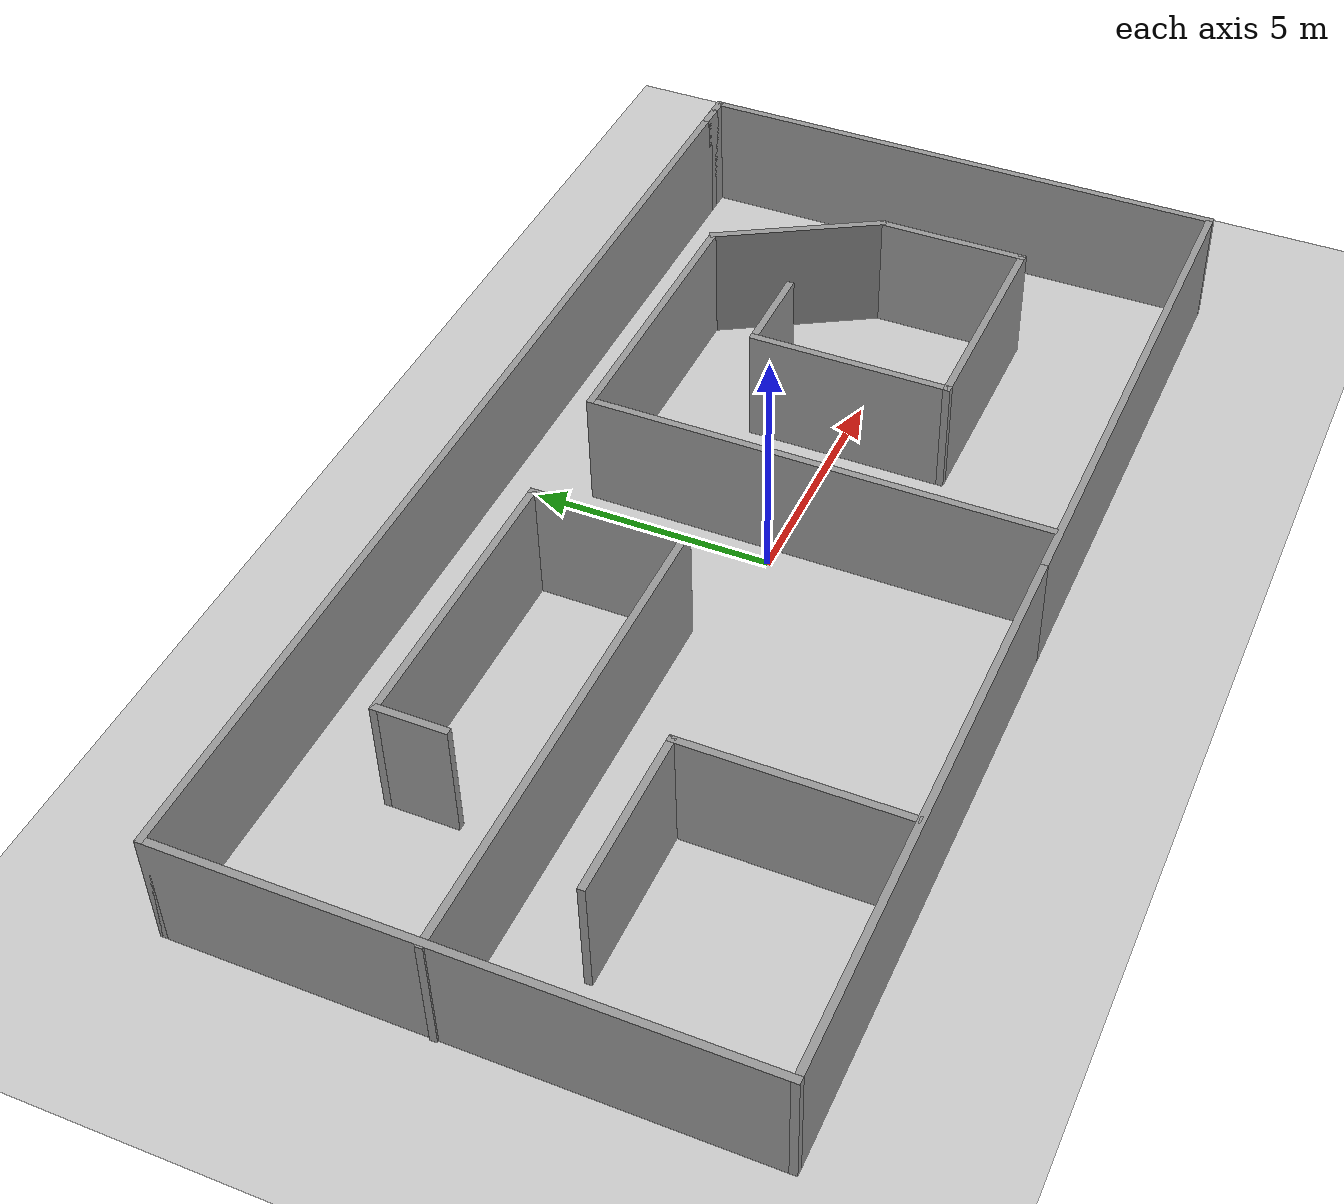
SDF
<sdf version="1.7">
 <world name="default">
  <light name="sun" type="directional">
   <pose>0 0 10 0 -0 0</pose>
   <diffuse>0.8 0.8 0.8 1</diffuse>
   <specular>0.2 0.2 0.2 1</specular>
   <attenuation>
    <range>1000</range>
    <constant>0.9</constant>
    <linear>0.01</linear>
    <quadratic>0.001</quadratic>
   </attenuation>
   <direction>-0.5 0.1 -0.9</direction>
   <spot><inner_angle>0</inner_angle><outer_angle>0</outer_angle><falloff>0</falloff></spot>
  </light>
  <model name="ground_plane">
   <static>1</static>
   <link name="link">
    <collision name="collision">
     <geometry><plane><normal>0 0 1</normal><size>100 100</size></plane></geometry>
     <surface><friction><ode><mu>100</mu><mu2>50</mu2></ode></friction></surface>
    </collision>
    <visual name="visual">
     <cast_shadows>0</cast_shadows>
     <geometry><plane><normal>0 0 1</normal><size>100 100</size></plane></geometry>
     <material>
      <script><uri>file://media/materials/scripts/gazebo.material</uri><name>Gazebo/Grey</name></script>
     </material>
    </visual>
   </link>
  </model>
  <gravity>0 0 -9.8</gravity>
  <magnetic_field>6e-06 2.3e-05 -4.2e-05</magnetic_field>
  <atmosphere type="adiabatic"/>
  <physics type="ode">
   <max_step_size>0.001</max_step_size>
   <real_time_factor>1</real_time_factor>
   <real_time_update_rate>1000</real_time_update_rate>
  </physics>
  <scene><ambient>0.4 0.4 0.4 1</ambient><background>0.7 0.7 0.7 1</background><shadows>1</shadows></scene>
  <spherical_coordinates>
   <surface_model>EARTH_WGS84</surface_model>
   <latitude_deg>0</latitude_deg>
   <longitude_deg>0</longitude_deg>
   <elevation>0</elevation>
   <heading_deg>0</heading_deg>
  </spherical_coordinates>
  <model name="mapa">
   <pose>-0.60955 0.1336 0 0 -0 0</pose>
   <link name="Wall_0">
    <collision name="Wall_0_Collision">
     <geometry><box><size>11.5 0.15 2.5</size></box></geometry>
     <pose>0 0 1.25 0 -0 0</pose>
    </collision>
    <visual name="Wall_0_Visual">
     <pose>0 0 1.25 0 -0 0</pose>
     <geometry><box><size>11.5 0.15 2.5</size></box></geometry>
     <material>
      <script><uri>file://media/materials/scripts/gazebo.material</uri><name>Gazebo/Grey</name></script>
      <ambient>1 1 1 1</ambient>
     </material>
     <meta><layer>0</layer></meta>
    </visual>
    <pose>5.76898 -5.675 0 0 -0 0</pose>
   </link>
   <link name="Wall_10">
    <collision name="Wall_10_Collision">
     <geometry><box><size>3.5 0.15 2.5</size></box></geometry>
     <pose>0 0 1.25 0 -0 0</pose>
    </collision>
    <visual name="Wall_10_Visual">
     <pose>0 0 1.25 0 -0 0</pose>
     <geometry><box><size>3.5 0.15 2.5</size></box></geometry>
     <material>
      <script><uri>file://media/materials/scripts/gazebo.material</uri><name>Gazebo/Grey</name></script>
      <ambient>1 1 1 1</ambient>
     </material>
     <meta><layer>0</layer></meta>
    </visual>
    <pose>-7.89894 -1.24928 0 0 -0 3.14159</pose>
   </link>
   <link name="Wall_12">
    <collision name="Wall_12_Collision">
     <geometry><box><size>10 0.15 2.5</size></box></geometry>
     <pose>0 0 1.25 0 -0 0</pose>
    </collision>
    <visual name="Wall_12_Visual">
     <pose>0 0 1.25 0 -0 0</pose>
     <geometry><box><size>10 0.15 2.5</size></box></geometry>
     <material>
      <script><uri>file://media/materials/scripts/gazebo.material</uri><name>Gazebo/Grey</name></script>
      <ambient>1 1 1 1</ambient>
     </material>
     <meta><layer>0</layer></meta>
    </visual>
    <pose>-6.61898 0.553456 0 0 -0 0</pose>
   </link>
   <link name="Wall_13">
    <collision name="Wall_13_Collision">
     <geometry><box><size>3.25 0.15 2.5</size></box></geometry>
     <pose>0 0 1.25 0 -0 0</pose>
    </collision>
    <visual name="Wall_13_Visual">
     <pose>0 0 1.25 0 -0 0</pose>
     <geometry><box><size>3.25 0.15 2.5</size></box></geometry>
     <material>
      <script><uri>file://media/materials/scripts/gazebo.material</uri><name>Gazebo/Grey</name></script>
      <ambient>1 1 1 1</ambient>
     </material>
     <meta><layer>0</layer></meta>
    </visual>
    <pose>-1.69398 2.10346 0 0 -0 1.5708</pose>
   </link>
   <link name="Wall_14">
    <collision name="Wall_14_Collision">
     <geometry><box><size>6 0.15 2.5</size></box></geometry>
     <pose>0 0 1.25 0 -0 0</pose>
    </collision>
    <visual name="Wall_14_Visual">
     <pose>0 0 1.25 0 -0 0</pose>
     <geometry><box><size>6 0.15 2.5</size></box></geometry>
     <material>
      <script><uri>file://media/materials/scripts/gazebo.material</uri><name>Gazebo/Grey</name></script>
      <ambient>1 1 1 1</ambient>
     </material>
     <meta><layer>0</layer></meta>
    </visual>
    <pose>-4.61898 3.65346 0 0 -0 3.14159</pose>
   </link>
   <link name="Wall_15">
    <collision name="Wall_15_Collision">
     <geometry><box><size>1.5 0.15 2.5</size></box></geometry>
     <pose>0 0 1.25 0 -0 0</pose>
    </collision>
    <visual name="Wall_15_Visual">
     <pose>0 0 1.25 0 -0 0</pose>
     <geometry><box><size>1.5 0.15 2.5</size></box></geometry>
     <material>
      <script><uri>file://media/materials/scripts/gazebo.material</uri><name>Gazebo/Grey</name></script>
      <ambient>1 1 1 1</ambient>
     </material>
     <meta><layer>0</layer></meta>
    </visual>
    <pose>-7.54398 2.97846 0 0 -0 -1.5708</pose>
   </link>
   <link name="Wall_17">
    <collision name="Wall_17_Collision">
     <geometry><box><size>9.5 0.15 2.5</size></box></geometry>
     <pose>0 0 1.25 0 -0 0</pose>
    </collision>
    <visual name="Wall_17_Visual">
     <pose>0 0 1.25 0 -0 0</pose>
     <geometry><box><size>9.5 0.15 2.5</size></box></geometry>
     <material>
      <script><uri>file://media/materials/scripts/gazebo.material</uri><name>Gazebo/Grey</name></script>
      <ambient>1 1 1 1</ambient>
     </material>
     <meta><layer>0</layer></meta>
    </visual>
    <pose>1.08533 -0.878024 0 0 -0 1.5708</pose>
   </link>
   <link name="Wall_18">
    <collision name="Wall_18_Collision">
     <geometry><box><size>6 0.15 2.5</size></box></geometry>
     <pose>0 0 1.25 0 -0 0</pose>
    </collision>
    <visual name="Wall_18_Visual">
     <pose>0 0 1.25 0 -0 0</pose>
     <geometry><box><size>6 0.15 2.5</size></box></geometry>
     <material>
      <script><uri>file://media/materials/scripts/gazebo.material</uri><name>Gazebo/Grey</name></script>
      <ambient>1 1 1 1</ambient>
     </material>
     <meta><layer>0</layer></meta>
    </visual>
    <pose>4.01033 3.79698 0 0 -0 0</pose>
   </link>
   <link name="Wall_19">
    <collision name="Wall_19_Collision">
     <geometry><box><size>3.75 0.15 2.5</size></box></geometry>
     <pose>0 0 1.25 0 -0 0</pose>
    </collision>
    <visual name="Wall_19_Visual">
     <pose>0 0 1.25 0 -0 0</pose>
     <geometry><box><size>3.75 0.15 2.5</size></box></geometry>
     <material>
      <script><uri>file://media/materials/scripts/gazebo.material</uri><name>Gazebo/Grey</name></script>
      <ambient>1 1 1 1</ambient>
     </material>
     <meta><layer>0</layer></meta>
    </visual>
    <pose>7.83533 2.23813 0 0 -0 -1.0472</pose>
   </link>
   <link name="Wall_2">
    <collision name="Wall_2_Collision">
     <geometry><box><size>11.75 0.15 2.5</size></box></geometry>
     <pose>0 0 1.25 0 -0 0</pose>
    </collision>
    <visual name="Wall_2_Visual">
     <pose>0 0 1.25 0 -0 0</pose>
     <geometry><box><size>11.75 0.15 2.5</size></box></geometry>
     <material>
      <script><uri>file://media/materials/scripts/gazebo.material</uri><name>Gazebo/Grey</name></script>
      <ambient>1 1 1 1</ambient>
     </material>
     <meta><layer>0</layer></meta>
    </visual>
    <pose>-5.70602 -5.675 0 0 -0 3.14159</pose>
   </link>
   <link name="Wall_20">
    <collision name="Wall_20_Collision">
     <geometry><box><size>3.25 0.15 2.5</size></box></geometry>
     <pose>0 0 1.25 0 -0 0</pose>
    </collision>
    <visual name="Wall_20_Visual">
     <pose>0 0 1.25 0 -0 0</pose>
     <geometry><box><size>3.25 0.15 2.5</size></box></geometry>
     <material>
      <script><uri>file://media/materials/scripts/gazebo.material</uri><name>Gazebo/Grey</name></script>
      <ambient>1 1 1 1</ambient>
     </material>
     <meta><layer>0</layer></meta>
    </visual>
    <pose>8.73533 -0.870716 0 0 -0 -1.5708</pose>
   </link>
   <link name="Wall_21">
    <collision name="Wall_21_Collision">
     <geometry><box><size>4.75 0.15 2.5</size></box></geometry>
     <pose>0 0 1.25 0 -0 0</pose>
    </collision>
    <visual name="Wall_21_Visual">
     <pose>0 0 1.25 0 -0 0</pose>
     <geometry><box><size>4.75 0.15 2.5</size></box></geometry>
     <material>
      <script><uri>file://media/materials/scripts/gazebo.material</uri><name>Gazebo/Grey</name></script>
      <ambient>1 1 1 1</ambient>
     </material>
     <meta><layer>0</layer></meta>
    </visual>
    <pose>6.43533 -2.42072 0 0 -0 3.14159</pose>
   </link>
   <link name="Wall_22">
    <collision name="Wall_22_Collision">
     <geometry><box><size>4.25 0.15 2.5</size></box></geometry>
     <pose>0 0 1.25 0 -0 0</pose>
    </collision>
    <visual name="Wall_22_Visual">
     <pose>0 0 1.25 0 -0 0</pose>
     <geometry><box><size>4.25 0.15 2.5</size></box></geometry>
     <material>
      <script><uri>file://media/materials/scripts/gazebo.material</uri><name>Gazebo/Grey</name></script>
      <ambient>1 1 1 1</ambient>
     </material>
     <meta><layer>0</layer></meta>
    </visual>
    <pose>4.13533 -0.370716 0 0 -0 1.5708</pose>
   </link>
   <link name="Wall_23">
    <collision name="Wall_23_Collision">
     <geometry><box><size>2 0.15 2.5</size></box></geometry>
     <pose>0 0 1.25 0 -0 0</pose>
    </collision>
    <visual name="Wall_23_Visual">
     <pose>0 0 1.25 0 -0 0</pose>
     <geometry><box><size>2 0.15 2.5</size></box></geometry>
     <material>
      <script><uri>file://media/materials/scripts/gazebo.material</uri><name>Gazebo/Grey</name></script>
      <ambient>1 1 1 1</ambient>
     </material>
     <meta><layer>0</layer></meta>
    </visual>
    <pose>5.06033 1.67928 0 0 -0 0</pose>
   </link>
   <link name="Wall_3">
    <collision name="Wall_3_Collision">
     <geometry><box><size>11.5 0.15 2.5</size></box></geometry>
     <pose>0 0 1.25 0 -0 0</pose>
    </collision>
    <visual name="Wall_3_Visual">
     <pose>0 0 1.25 0 -0 0</pose>
     <geometry><box><size>11.5 0.15 2.5</size></box></geometry>
     <material>
      <script><uri>file://media/materials/scripts/gazebo.material</uri><name>Gazebo/Grey</name></script>
      <ambient>1 1 1 1</ambient>
     </material>
     <meta><layer>0</layer></meta>
    </visual>
    <pose>-11.506 0 0 0 -0 1.5708</pose>
   </link>
   <link name="Wall_4">
    <collision name="Wall_4_Collision">
     <geometry><box><size>22.5 0.15 2.5</size></box></geometry>
     <pose>0 0 1.25 0 -0 0</pose>
    </collision>
    <visual name="Wall_4_Visual">
     <pose>0 0 1.25 0 -0 0</pose>
     <geometry><box><size>22.5 0.15 2.5</size></box></geometry>
     <material>
      <script><uri>file://media/materials/scripts/gazebo.material</uri><name>Gazebo/Grey</name></script>
      <ambient>1 1 1 1</ambient>
     </material>
     <meta><layer>0</layer></meta>
    </visual>
    <pose>-0.331021 5.675 0 0 -0 0</pose>
   </link>
   <link name="Wall_5">
    <collision name="Wall_5_Collision">
     <geometry><box><size>0.5 0.15 2.5</size></box></geometry>
     <pose>0 0 1.25 0 -0 0</pose>
    </collision>
    <visual name="Wall_5_Visual">
     <pose>0 0 1.25 0 -0 0</pose>
     <geometry><box><size>0.5 0.15 2.5</size></box></geometry>
     <material>
      <script><uri>file://media/materials/scripts/gazebo.material</uri><name>Gazebo/Grey</name></script>
      <ambient>1 1 1 1</ambient>
     </material>
     <meta><layer>0</layer></meta>
    </visual>
    <pose>11.019 5.675 0 0 -0 0</pose>
   </link>
   <link name="Wall_6">
    <collision name="Wall_6_Collision">
     <geometry><box><size>0.5 0.15 2.5</size></box></geometry>
     <pose>0 0 1.25 0 -0 0</pose>
    </collision>
    <visual name="Wall_6_Visual">
     <pose>0 0 1.25 0 -0 0</pose>
     <geometry><box><size>0.5 0.15 2.5</size></box></geometry>
     <material>
      <script><uri>file://media/materials/scripts/gazebo.material</uri><name>Gazebo/Grey</name></script>
      <ambient>1 1 1 1</ambient>
     </material>
     <meta><layer>0</layer></meta>
    </visual>
    <pose>11.369 5.675 0 0 -0 0</pose>
   </link>
   <link name="Wall_7">
    <collision name="Wall_7_Collision">
     <geometry><box><size>11.5 0.15 2.5</size></box></geometry>
     <pose>0 0 1.25 0 -0 0</pose>
    </collision>
    <visual name="Wall_7_Visual">
     <pose>0 0 1.25 0 -0 0</pose>
     <geometry><box><size>11.5 0.15 2.5</size></box></geometry>
     <material>
      <script><uri>file://media/materials/scripts/gazebo.material</uri><name>Gazebo/Grey</name></script>
      <ambient>1 1 1 1</ambient>
     </material>
     <meta><layer>0</layer></meta>
    </visual>
    <pose>11.544 0 0 0 -0 -1.5708</pose>
   </link>
   <link name="Wall_9">
    <collision name="Wall_9_Collision">
     <geometry><box><size>4.5 0.15 2.5</size></box></geometry>
     <pose>0 0 1.25 0 -0 0</pose>
    </collision>
    <visual name="Wall_9_Visual">
     <pose>0 0 1.25 0 -0 0</pose>
     <geometry><box><size>4.5 0.15 2.5</size></box></geometry>
     <material>
      <script><uri>file://media/materials/scripts/gazebo.material</uri><name>Gazebo/Grey</name></script>
      <ambient>1 1 1 1</ambient>
     </material>
     <meta><layer>0</layer></meta>
    </visual>
    <pose>-6.22394 -3.42428 0 0 -0 1.5708</pose>
   </link>
   <static>1</static>
  </model>
 </world>
</sdf>
